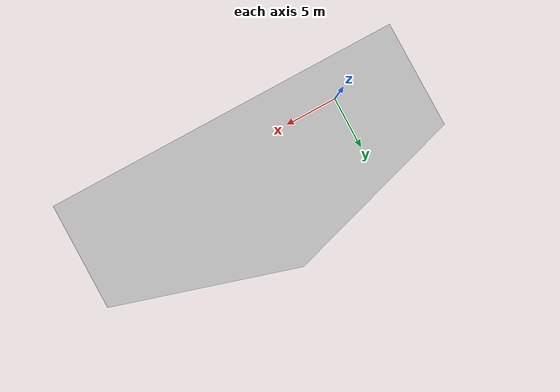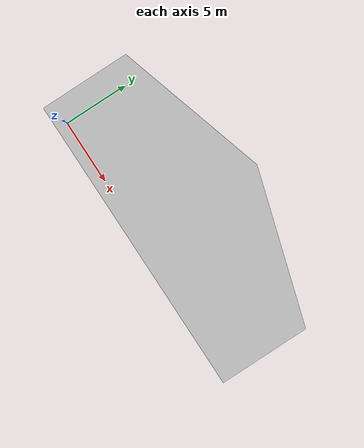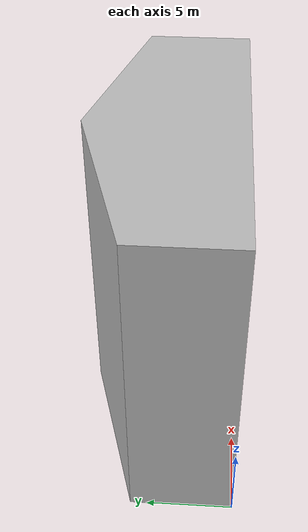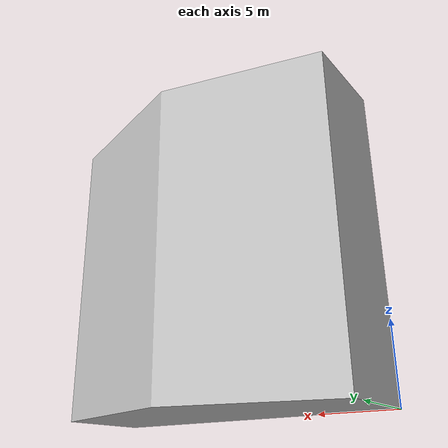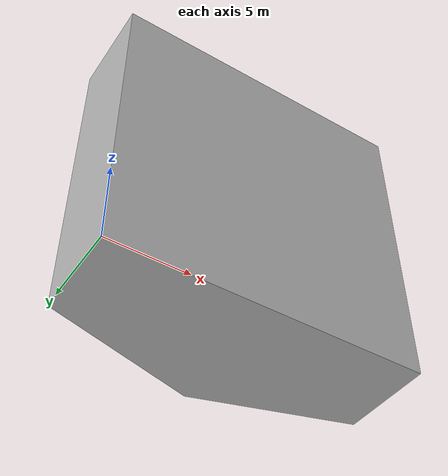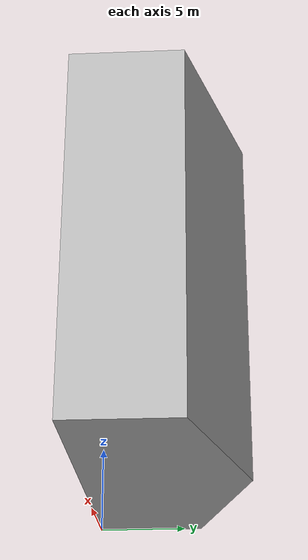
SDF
<sdf version="1.6">
  <model name="warehouse">
    <static>true</static>
    <link name="link">
      <collision name="collision">
        <geometry>
          <mesh>
            <uri>model:///warehouse/meshes/warehouse.stl</uri>
            <scale>0.001 0.001 0.001</scale>
          </mesh>
        </geometry>
      </collision>
      <visual name="visual">
        <geometry>
          <mesh>
            <uri>model:///warehouse/meshes/warehouse.stl</uri>
            <scale>0.001 0.001 0.001</scale>
          </mesh>
        </geometry>
      </visual>
    </link>
  </model>
</sdf>
